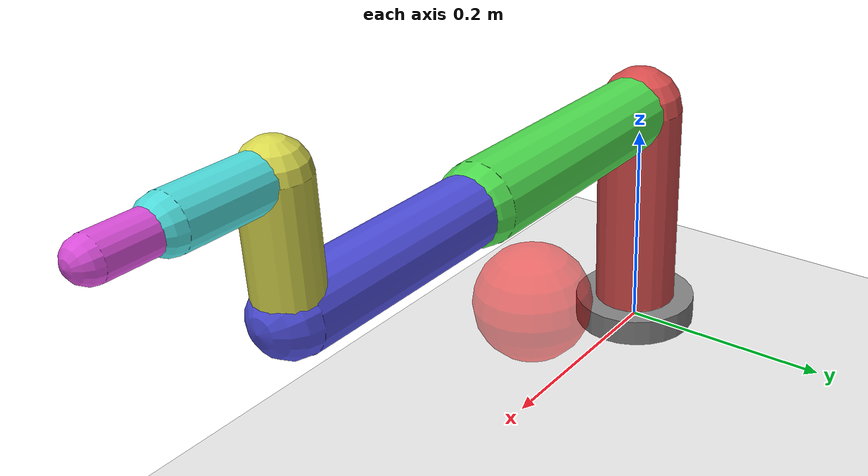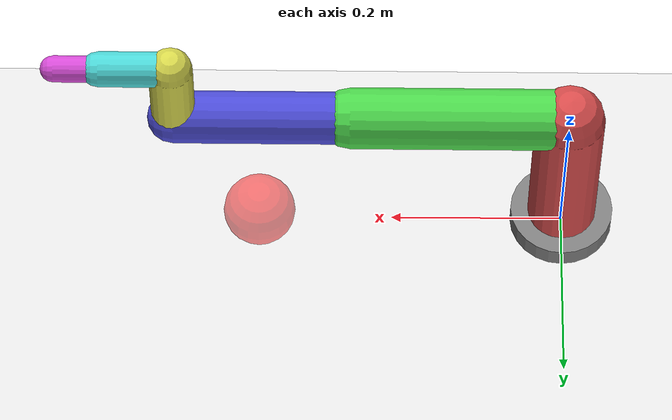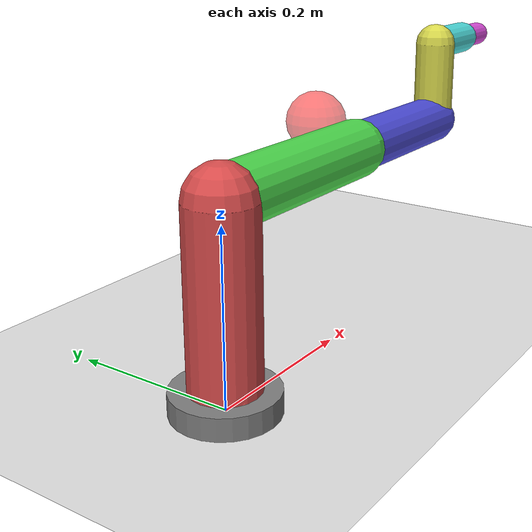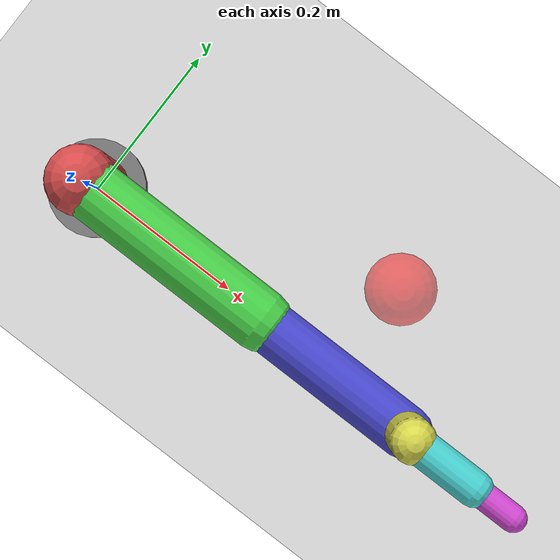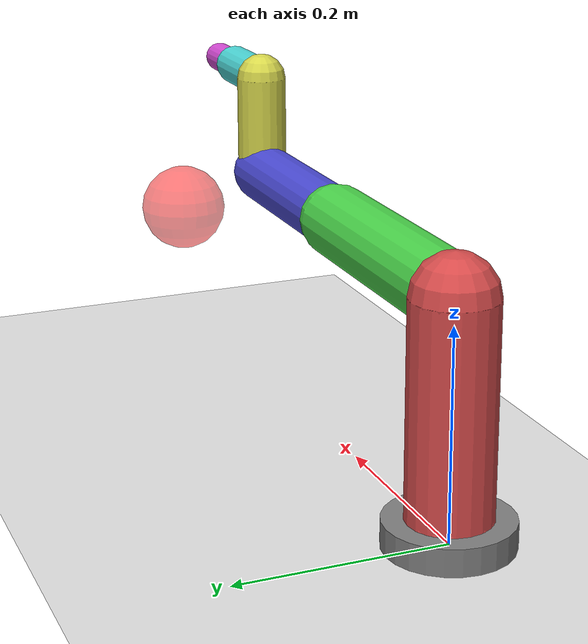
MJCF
<mujoco model="arm6dof">
  <compiler angle="radian"/>
  <option gravity="0 0 -9.81" timestep="0.002"/>

  <default>
    <geom contype="1" conaffinity="1" margin="0.001"/>
    <joint damping="0.5"/>
  </default>

  <worldbody>
    <light pos="0 0 3" dir="0 0 -1"/>
    <geom name="floor" type="plane" size="5 5 0.1" contype="0" conaffinity="0" rgba="0.9 0.9 0.9 1"/>

    <body name="base" pos="0 0 0">
      <geom name="base_geom" type="cylinder" size="0.06 0.025" rgba="0.5 0.5 0.5 1" contype="0" conaffinity="0"/>

      <body name="link1" pos="0 0 0.025">
        <joint name="joint1" type="hinge" axis="0 0 1" range="-3.14159 3.14159" limited="true"/>
        <geom name="link1_geom" type="capsule" size="0.04" fromto="0 0 0 0 0 0.2" rgba="0.85 0.3 0.3 1"/>

        <body name="link2" pos="0 0 0.2">
          <joint name="joint2" type="hinge" axis="0 1 0" range="-1.5708 1.5708" limited="true"/>
          <geom name="link2_geom" type="capsule" size="0.035" fromto="0 0 0 0.25 0 0" rgba="0.3 0.85 0.3 1"/>

          <body name="link3" pos="0.25 0 0">
            <joint name="joint3" type="hinge" axis="0 1 0" range="-2.3562 2.3562" limited="true"/>
            <geom name="link3_geom" type="capsule" size="0.03" fromto="0 0 0 0.2 0 0" rgba="0.3 0.3 0.85 1"/>

            <body name="link4" pos="0.2 0 0">
              <joint name="joint4" type="hinge" axis="0 0 1" range="-3.14159 3.14159" limited="true"/>
              <geom name="link4_geom" type="capsule" size="0.025" fromto="0 0 0 0 0 0.1" rgba="0.85 0.85 0.3 1"/>

              <body name="link5" pos="0 0 0.1">
                <joint name="joint5" type="hinge" axis="0 1 0" range="-1.5708 1.5708" limited="true"/>
                <geom name="link5_geom" type="capsule" size="0.02" fromto="0 0 0 0.08 0 0" rgba="0.3 0.85 0.85 1"/>

                <body name="link6" pos="0.08 0 0">
                  <joint name="joint6" type="hinge" axis="0 0 1" range="-3.14159 3.14159" limited="true"/>
                  <geom name="link6_geom" type="capsule" size="0.015" fromto="0 0 0 0.05 0 0" rgba="0.85 0.3 0.85 1"/>

                  <site name="end_effector" pos="0.05 0 0" size="0.01" rgba="1 1 1 1"/>
                </body>
              </body>
            </body>
          </body>
        </body>
      </body>
    </body>

    <body name="obstacle" pos="0.35 0.12 0.225">
      <geom name="obstacle_geom" type="sphere" size="0.04" rgba="1 0 0 0.5" contype="1" conaffinity="1"/>
    </body>
  </worldbody>

  <keyframe>
    <key name="home" qpos="0 0 0 0 0 0"/>
  </keyframe>
</mujoco>
